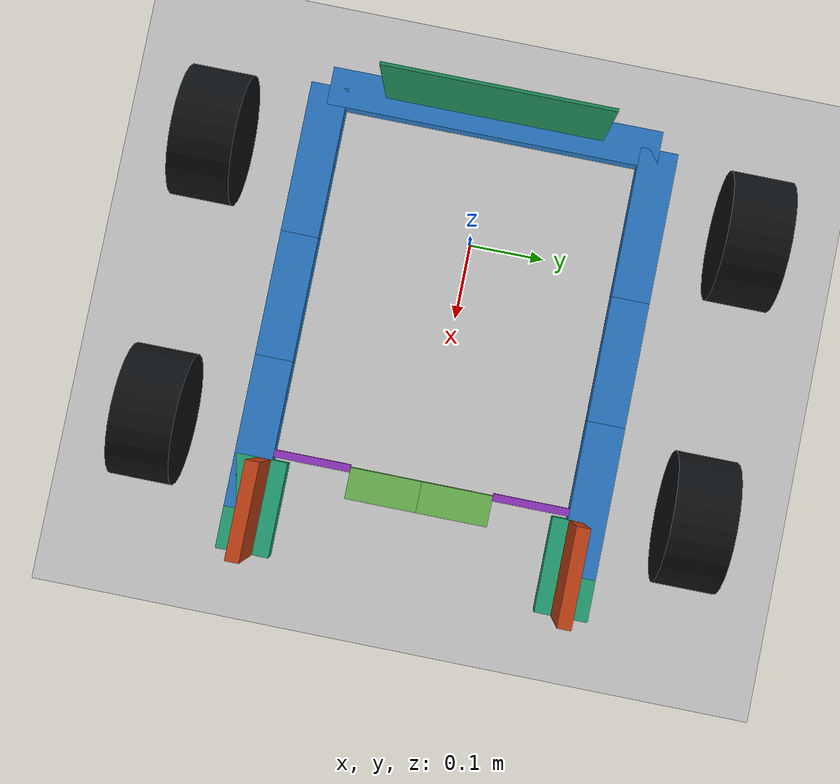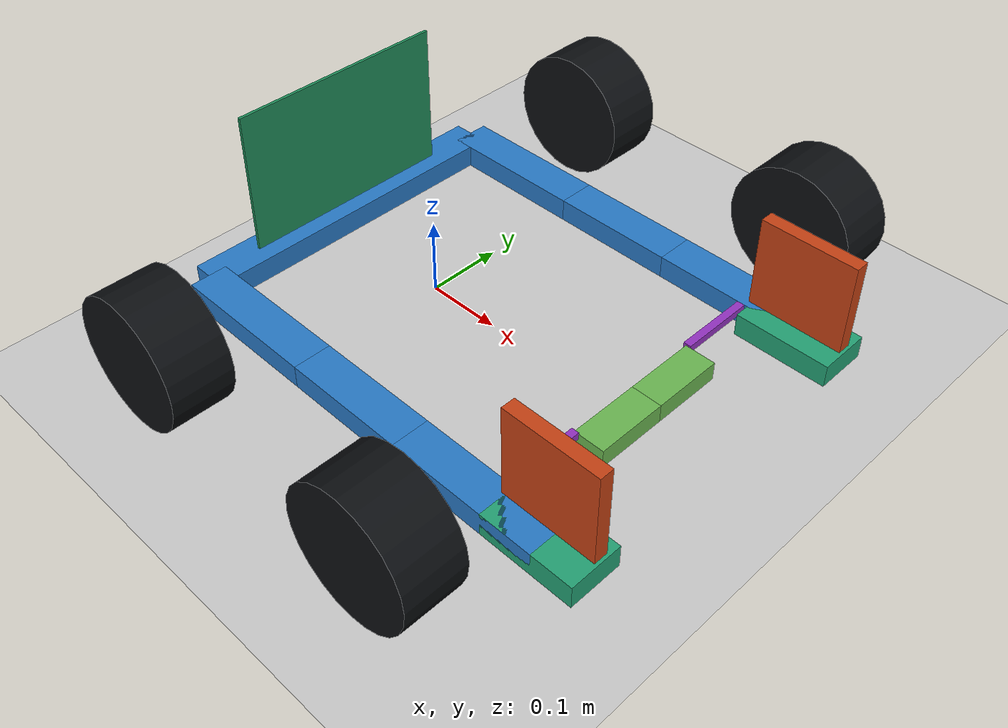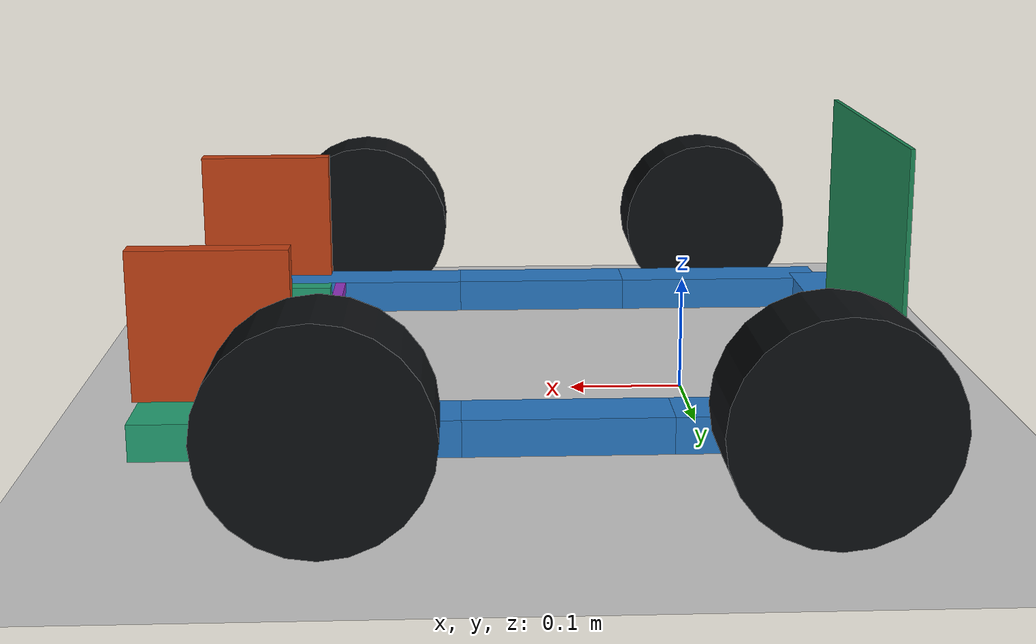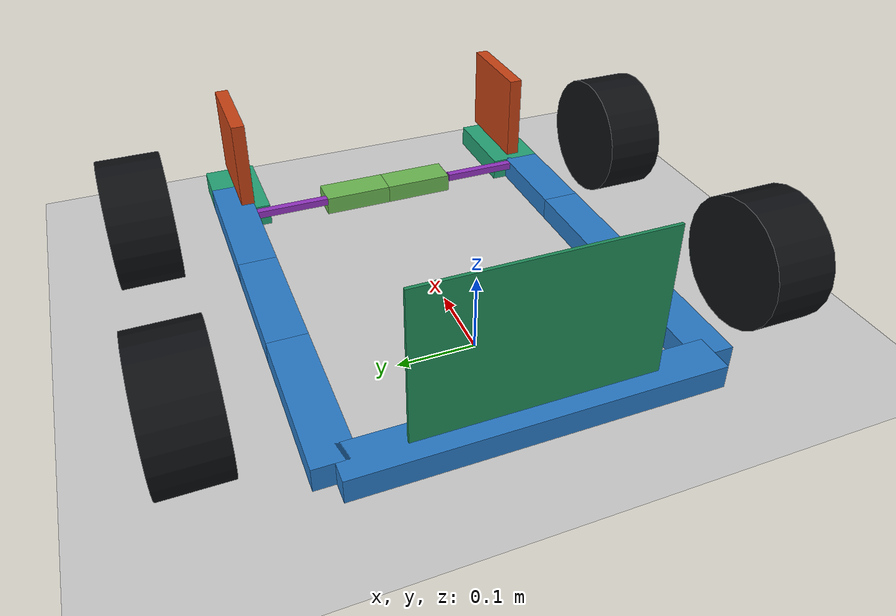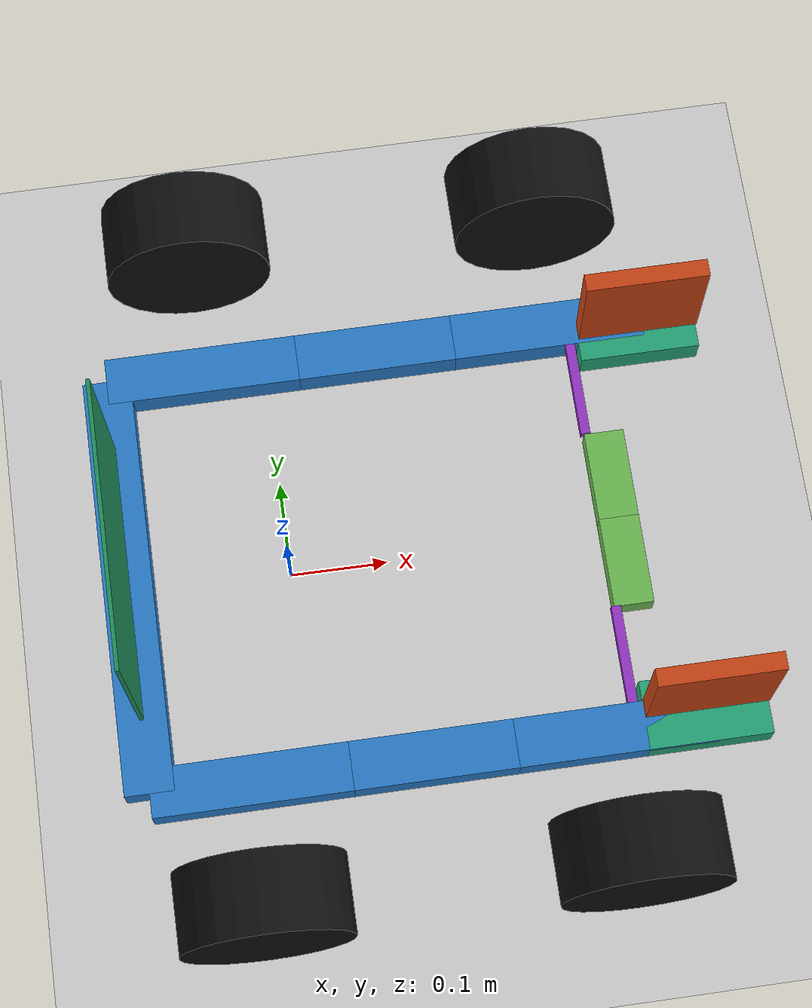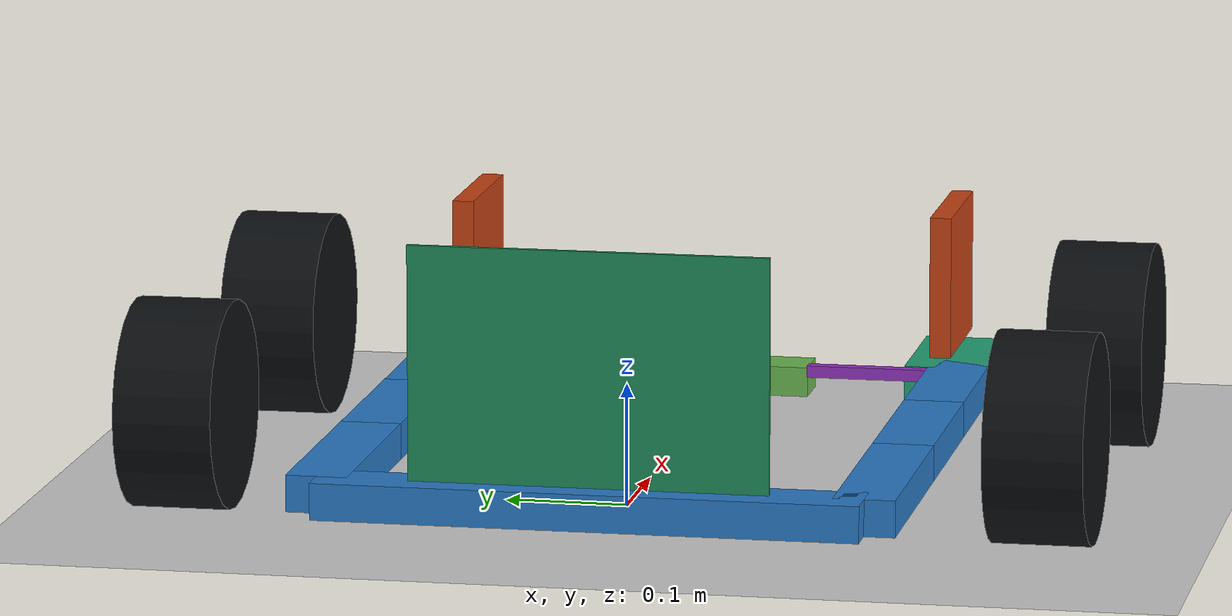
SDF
<?xml version='1.0' encoding='utf-8'?>
<sdf version="1.10">
  <world name="modular_chassis_integration">
    <physics name="deterministic_1ms" type="ignored">
      <max_step_size>0.001</max_step_size>
      <real_time_factor>1.0</real_time_factor>
    </physics>
    <gravity>0 0 -9.80665</gravity>
    <plugin filename="gz-sim-physics-system" name="gz::sim::systems::Physics" />
    <plugin filename="gz-sim-user-commands-system" name="gz::sim::systems::UserCommands" />
    <plugin filename="gz-sim-scene-broadcaster-system" name="gz::sim::systems::SceneBroadcaster" />
    <plugin filename="gz-sim-forcetorque-system" name="gz::sim::systems::ForceTorque" />
    <light type="directional" name="sun">
      <cast_shadows>true</cast_shadows>
      <pose>0 0 10 0 0 0</pose>
      <direction>-0.5 0.1 -0.9</direction>
    </light>
    <model name="ground_plane">
      <static>true</static>
      <link name="link">
        <collision name="collision">
          <geometry>
            <plane>
              <normal>0 0 1</normal>
              <size>20 20</size>
            </plane>
          </geometry>
          <surface>
            <friction>
              <ode>
                <mu>0.9</mu>
                <mu2>0.9</mu2>
              </ode>
            </friction>
          </surface>
        </collision>
        <visual name="visual">
          <geometry>
            <plane>
              <normal>0 0 1</normal>
              <size>20 20</size>
            </plane>
          </geometry>
        </visual>
      </link>
    </model>
    <model name="modular_test_chassis_v2">
      <self_collide>false</self_collide>
      <link name="rear_crossbar">
        <pose>-0.165 0 0.037 0 0 0</pose>
        <inertial>
          <mass>0.45</mass>
          <inertia>
            <ixx>0.00729375</ixx>
            <iyy>0.0001275</iyy>
            <izz>0.00735375</izz>
            <ixy>0</ixy>
            <ixz>0</ixz>
            <iyz>0</iyz>
          </inertia>
        </inertial>
        <collision name="rear_crossbar_collision">
          <pose>0 0 0 0 0 0</pose>
          <geometry>
            <box>
              <size>0.05 0.44 0.03</size>
            </box>
          </geometry>
        </collision>
        <visual name="rear_crossbar_visual">
          <pose>0 0 0 0 0 0</pose>
          <geometry>
            <box>
              <size>0.05 0.44 0.03</size>
            </box>
          </geometry>
          <material>
            <diffuse>0.16 0.48 0.78 1</diffuse>
          </material>
        </visual>
      </link>
      <link name="rear_left_motor_module">
        <pose>-0.065 0.22 0.037 0 0 0</pose>
        <inertial>
          <mass>0.32</mass>
          <inertia>
            <ixx>9.06666667e-05</ixx>
            <iyy>0.00109066667</iyy>
            <izz>0.00113333333</izz>
            <ixy>0</ixy>
            <ixz>0</ixz>
            <iyz>0</iyz>
          </inertia>
        </inertial>
        <collision name="rear_left_motor_module_collision">
          <pose>0 0 0 0 0 0</pose>
          <geometry>
            <box>
              <size>0.2 0.05 0.03</size>
            </box>
          </geometry>
        </collision>
        <visual name="rear_left_motor_module_visual">
          <pose>0 0 0 0 0 0</pose>
          <geometry>
            <box>
              <size>0.2 0.05 0.03</size>
            </box>
          </geometry>
          <material>
            <diffuse>0.16 0.48 0.78 1</diffuse>
          </material>
        </visual>
      </link>
      <link name="front_left_motor_module">
        <pose>0.3 0.22 0.037 0 0 0</pose>
        <inertial>
          <mass>0.32</mass>
          <inertia>
            <ixx>9.06666667e-05</ixx>
            <iyy>0.00109066667</iyy>
            <izz>0.00113333333</izz>
            <ixy>0</ixy>
            <ixz>0</ixz>
            <iyz>0</iyz>
          </inertia>
        </inertial>
        <collision name="front_left_motor_module_collision">
          <pose>0 0 0 0 0 0</pose>
          <geometry>
            <box>
              <size>0.2 0.05 0.03</size>
            </box>
          </geometry>
        </collision>
        <visual name="front_left_motor_module_visual">
          <pose>0 0 0 0 0 0</pose>
          <geometry>
            <box>
              <size>0.2 0.05 0.03</size>
            </box>
          </geometry>
          <material>
            <diffuse>0.16 0.48 0.78 1</diffuse>
          </material>
        </visual>
      </link>
      <link name="left_rail_extension">
        <pose>0.1175 0.22 0.037 0 0 0</pose>
        <inertial>
          <mass>0.2</mass>
          <inertia>
            <ixx>5.66666667e-05</ixx>
            <iyy>0.00046875</iyy>
            <izz>0.000495416667</izz>
            <ixy>0</ixy>
            <ixz>0</ixz>
            <iyz>0</iyz>
          </inertia>
        </inertial>
        <collision name="left_rail_extension_collision">
          <pose>0 0 0 0 0 0</pose>
          <geometry>
            <box>
              <size>0.165 0.05 0.03</size>
            </box>
          </geometry>
        </collision>
        <visual name="left_rail_extension_visual">
          <pose>0 0 0 0 0 0</pose>
          <geometry>
            <box>
              <size>0.165 0.05 0.03</size>
            </box>
          </geometry>
          <material>
            <diffuse>0.16 0.48 0.78 1</diffuse>
          </material>
        </visual>
      </link>
      <link name="left_gamma_body">
        <pose>0.3925 0.21 0.037 0 0 0</pose>
        <inertial>
          <mass>0.38</mass>
          <inertia>
            <ixx>0.000183666667</ixx>
            <iyy>0.000523291667</iyy>
            <izz>0.000649958333</izz>
            <ixy>0</ixy>
            <ixz>0</ixz>
            <iyz>0</iyz>
          </inertia>
        </inertial>
        <collision name="landing_collision">
          <pose>0 0 0 0 0 0</pose>
          <geometry>
            <box>
              <size>0.125 0.07 0.03</size>
            </box>
          </geometry>
        </collision>
        <visual name="landing_visual">
          <pose>0 0 0 0 0 0</pose>
          <geometry>
            <box>
              <size>0.125 0.07 0.03</size>
            </box>
          </geometry>
          <material>
            <diffuse>0.14 0.64 0.46 1</diffuse>
          </material>
        </visual>
      </link>
      <link name="left_intake_half">
        <pose>0.3925 0.105 0.09 0 0 0</pose>
        <inertial>
          <mass>0.7</mass>
          <inertia>
            <ixx>0.00364583333</ixx>
            <iyy>0.0046725</iyy>
            <izz>0.00569333333</izz>
            <ixy>0</ixy>
            <ixz>0</ixz>
            <iyz>0</iyz>
          </inertia>
        </inertial>
        <collision name="gamma_upright_collision">
          <pose>0 0.1 0.03 0 0 0</pose>
          <geometry>
            <box>
              <size>0.125 0.018 0.12</size>
            </box>
          </geometry>
        </collision>
        <visual name="gamma_upright_visual">
          <pose>0 0.1 0.03 0 0 0</pose>
          <geometry>
            <box>
              <size>0.125 0.018 0.12</size>
            </box>
          </geometry>
          <material>
            <diffuse>0.78 0.26 0.08 1</diffuse>
          </material>
        </visual>
        <collision name="ramp_half_collision">
          <pose>-0.0525 -0.058 -0.053 0 0 0</pose>
          <geometry>
            <box>
              <size>0.041 0.094 0.025</size>
            </box>
          </geometry>
        </collision>
        <visual name="ramp_half_visual">
          <pose>-0.0525 -0.058 -0.053 0 0 0</pose>
          <geometry>
            <box>
              <size>0.041 0.094 0.025</size>
            </box>
          </geometry>
          <material>
            <diffuse>0.42 0.72 0.32 1</diffuse>
          </material>
        </visual>
        <collision name="ramp_cradle_collision">
          <pose>-0.0715 0.0395 -0.043 0 0 0</pose>
          <geometry>
            <box>
              <size>0.01 0.101 0.01</size>
            </box>
          </geometry>
        </collision>
        <visual name="ramp_cradle_visual">
          <pose>-0.0715 0.0395 -0.043 0 0 0</pose>
          <geometry>
            <box>
              <size>0.01 0.101 0.01</size>
            </box>
          </geometry>
          <material>
            <diffuse>0.58 0.20 0.76 1</diffuse>
          </material>
        </visual>
      </link>
      <joint name="rear_left_corner_joint" type="fixed">
        <parent>rear_crossbar</parent>
        <child>rear_left_motor_module</child>
        <sensor name="connection_wrench" type="force_torque">
          <always_on>true</always_on>
          <update_rate>500</update_rate>
          <force_torque>
            <frame>child</frame>
            <measure_direction>child_to_parent</measure_direction>
          </force_torque>
        </sensor>
      </joint>
      <joint name="left_motor_splice_joint" type="fixed">
        <parent>left_rail_extension</parent>
        <child>front_left_motor_module</child>
        <sensor name="connection_wrench" type="force_torque">
          <always_on>true</always_on>
          <update_rate>500</update_rate>
          <force_torque>
            <frame>child</frame>
            <measure_direction>child_to_parent</measure_direction>
          </force_torque>
        </sensor>
      </joint>
      <joint name="left_rear_extension_splice_joint" type="fixed">
        <parent>rear_left_motor_module</parent>
        <child>left_rail_extension</child>
        <sensor name="connection_wrench" type="force_torque">
          <always_on>true</always_on>
          <update_rate>500</update_rate>
          <force_torque>
            <frame>child</frame>
            <measure_direction>child_to_parent</measure_direction>
          </force_torque>
        </sensor>
      </joint>
      <joint name="left_gamma_splice_joint" type="fixed">
        <parent>front_left_motor_module</parent>
        <child>left_gamma_body</child>
        <sensor name="connection_wrench" type="force_torque">
          <always_on>true</always_on>
          <update_rate>500</update_rate>
          <force_torque>
            <frame>child</frame>
            <measure_direction>child_to_parent</measure_direction>
          </force_torque>
        </sensor>
      </joint>
      <joint name="left_intake_mount_joint" type="fixed">
        <parent>left_gamma_body</parent>
        <child>left_intake_half</child>
        <sensor name="connection_wrench" type="force_torque">
          <always_on>true</always_on>
          <update_rate>500</update_rate>
          <force_torque>
            <frame>child</frame>
            <measure_direction>child_to_parent</measure_direction>
          </force_torque>
        </sensor>
      </joint>
      <link name="rear_right_motor_module">
        <pose>-0.065 -0.22 0.037 0 0 0</pose>
        <inertial>
          <mass>0.32</mass>
          <inertia>
            <ixx>9.06666667e-05</ixx>
            <iyy>0.00109066667</iyy>
            <izz>0.00113333333</izz>
            <ixy>0</ixy>
            <ixz>0</ixz>
            <iyz>0</iyz>
          </inertia>
        </inertial>
        <collision name="rear_right_motor_module_collision">
          <pose>0 0 0 0 0 0</pose>
          <geometry>
            <box>
              <size>0.2 0.05 0.03</size>
            </box>
          </geometry>
        </collision>
        <visual name="rear_right_motor_module_visual">
          <pose>0 0 0 0 0 0</pose>
          <geometry>
            <box>
              <size>0.2 0.05 0.03</size>
            </box>
          </geometry>
          <material>
            <diffuse>0.16 0.48 0.78 1</diffuse>
          </material>
        </visual>
      </link>
      <link name="front_right_motor_module">
        <pose>0.3 -0.22 0.037 0 0 0</pose>
        <inertial>
          <mass>0.32</mass>
          <inertia>
            <ixx>9.06666667e-05</ixx>
            <iyy>0.00109066667</iyy>
            <izz>0.00113333333</izz>
            <ixy>0</ixy>
            <ixz>0</ixz>
            <iyz>0</iyz>
          </inertia>
        </inertial>
        <collision name="front_right_motor_module_collision">
          <pose>0 0 0 0 0 0</pose>
          <geometry>
            <box>
              <size>0.2 0.05 0.03</size>
            </box>
          </geometry>
        </collision>
        <visual name="front_right_motor_module_visual">
          <pose>0 0 0 0 0 0</pose>
          <geometry>
            <box>
              <size>0.2 0.05 0.03</size>
            </box>
          </geometry>
          <material>
            <diffuse>0.16 0.48 0.78 1</diffuse>
          </material>
        </visual>
      </link>
      <link name="right_rail_extension">
        <pose>0.1175 -0.22 0.037 0 0 0</pose>
        <inertial>
          <mass>0.2</mass>
          <inertia>
            <ixx>5.66666667e-05</ixx>
            <iyy>0.00046875</iyy>
            <izz>0.000495416667</izz>
            <ixy>0</ixy>
            <ixz>0</ixz>
            <iyz>0</iyz>
          </inertia>
        </inertial>
        <collision name="right_rail_extension_collision">
          <pose>0 0 0 0 0 0</pose>
          <geometry>
            <box>
              <size>0.165 0.05 0.03</size>
            </box>
          </geometry>
        </collision>
        <visual name="right_rail_extension_visual">
          <pose>0 0 0 0 0 0</pose>
          <geometry>
            <box>
              <size>0.165 0.05 0.03</size>
            </box>
          </geometry>
          <material>
            <diffuse>0.16 0.48 0.78 1</diffuse>
          </material>
        </visual>
      </link>
      <link name="right_gamma_body">
        <pose>0.3925 -0.21 0.037 0 0 0</pose>
        <inertial>
          <mass>0.38</mass>
          <inertia>
            <ixx>0.000183666667</ixx>
            <iyy>0.000523291667</iyy>
            <izz>0.000649958333</izz>
            <ixy>0</ixy>
            <ixz>0</ixz>
            <iyz>0</iyz>
          </inertia>
        </inertial>
        <collision name="landing_collision">
          <pose>0 0 0 0 0 0</pose>
          <geometry>
            <box>
              <size>0.125 0.07 0.03</size>
            </box>
          </geometry>
        </collision>
        <visual name="landing_visual">
          <pose>0 0 0 0 0 0</pose>
          <geometry>
            <box>
              <size>0.125 0.07 0.03</size>
            </box>
          </geometry>
          <material>
            <diffuse>0.14 0.64 0.46 1</diffuse>
          </material>
        </visual>
      </link>
      <link name="right_intake_half">
        <pose>0.3925 -0.105 0.09 0 0 0</pose>
        <inertial>
          <mass>0.7</mass>
          <inertia>
            <ixx>0.00364583333</ixx>
            <iyy>0.0046725</iyy>
            <izz>0.00569333333</izz>
            <ixy>0</ixy>
            <ixz>0</ixz>
            <iyz>0</iyz>
          </inertia>
        </inertial>
        <collision name="gamma_upright_collision">
          <pose>0 -0.1 0.03 0 0 0</pose>
          <geometry>
            <box>
              <size>0.125 0.018 0.12</size>
            </box>
          </geometry>
        </collision>
        <visual name="gamma_upright_visual">
          <pose>0 -0.1 0.03 0 0 0</pose>
          <geometry>
            <box>
              <size>0.125 0.018 0.12</size>
            </box>
          </geometry>
          <material>
            <diffuse>0.78 0.26 0.08 1</diffuse>
          </material>
        </visual>
        <collision name="ramp_half_collision">
          <pose>-0.0525 0.058 -0.053 0 0 0</pose>
          <geometry>
            <box>
              <size>0.041 0.094 0.025</size>
            </box>
          </geometry>
        </collision>
        <visual name="ramp_half_visual">
          <pose>-0.0525 0.058 -0.053 0 0 0</pose>
          <geometry>
            <box>
              <size>0.041 0.094 0.025</size>
            </box>
          </geometry>
          <material>
            <diffuse>0.42 0.72 0.32 1</diffuse>
          </material>
        </visual>
        <collision name="ramp_cradle_collision">
          <pose>-0.0715 -0.0395 -0.043 0 0 0</pose>
          <geometry>
            <box>
              <size>0.01 0.101 0.01</size>
            </box>
          </geometry>
        </collision>
        <visual name="ramp_cradle_visual">
          <pose>-0.0715 -0.0395 -0.043 0 0 0</pose>
          <geometry>
            <box>
              <size>0.01 0.101 0.01</size>
            </box>
          </geometry>
          <material>
            <diffuse>0.58 0.20 0.76 1</diffuse>
          </material>
        </visual>
      </link>
      <joint name="rear_right_corner_joint" type="fixed">
        <parent>rear_crossbar</parent>
        <child>rear_right_motor_module</child>
        <sensor name="connection_wrench" type="force_torque">
          <always_on>true</always_on>
          <update_rate>500</update_rate>
          <force_torque>
            <frame>child</frame>
            <measure_direction>child_to_parent</measure_direction>
          </force_torque>
        </sensor>
      </joint>
      <joint name="right_motor_splice_joint" type="fixed">
        <parent>right_rail_extension</parent>
        <child>front_right_motor_module</child>
        <sensor name="connection_wrench" type="force_torque">
          <always_on>true</always_on>
          <update_rate>500</update_rate>
          <force_torque>
            <frame>child</frame>
            <measure_direction>child_to_parent</measure_direction>
          </force_torque>
        </sensor>
      </joint>
      <joint name="right_rear_extension_splice_joint" type="fixed">
        <parent>rear_right_motor_module</parent>
        <child>right_rail_extension</child>
        <sensor name="connection_wrench" type="force_torque">
          <always_on>true</always_on>
          <update_rate>500</update_rate>
          <force_torque>
            <frame>child</frame>
            <measure_direction>child_to_parent</measure_direction>
          </force_torque>
        </sensor>
      </joint>
      <joint name="right_gamma_splice_joint" type="fixed">
        <parent>front_right_motor_module</parent>
        <child>right_gamma_body</child>
        <sensor name="connection_wrench" type="force_torque">
          <always_on>true</always_on>
          <update_rate>500</update_rate>
          <force_torque>
            <frame>child</frame>
            <measure_direction>child_to_parent</measure_direction>
          </force_torque>
        </sensor>
      </joint>
      <joint name="right_intake_mount_joint" type="fixed">
        <parent>right_gamma_body</parent>
        <child>right_intake_half</child>
        <sensor name="connection_wrench" type="force_torque">
          <always_on>true</always_on>
          <update_rate>500</update_rate>
          <force_torque>
            <frame>child</frame>
            <measure_direction>child_to_parent</measure_direction>
          </force_torque>
        </sensor>
      </joint>
      <link name="rear_left_wheel">
        <pose>-0.065 0.35 0.085 1.57079633 0 0</pose>
        <inertial>
          <mass>0.7</mass>
          <inertia>
            <ixx>0.00205916667</ixx>
            <iyy>0.00205916667</iyy>
            <izz>0.00337166667</izz>
            <ixy>0</ixy>
            <ixz>0</ixz>
            <iyz>0</iyz>
          </inertia>
        </inertial>
        <collision name="rear_left_collision">
          <geometry>
            <cylinder>
              <radius>0.085</radius>
              <length>0.08</length>
            </cylinder>
          </geometry>
          <surface>
            <friction>
              <ode>
                <mu>0.9</mu>
                <mu2>0.9</mu2>
              </ode>
            </friction>
          </surface>
        </collision>
        <visual name="rear_left_visual">
          <geometry>
            <cylinder>
              <radius>0.085</radius>
              <length>0.08</length>
            </cylinder>
          </geometry>
          <material>
            <diffuse>0.05 0.06 0.07 1</diffuse>
          </material>
        </visual>
      </link>
      <joint name="rear_left_wheel_joint" type="revolute">
        <parent>rear_left_motor_module</parent>
        <child>rear_left_wheel</child>
        <axis>
          <xyz expressed_in="__model__">0 1 0</xyz>
          <limit>
            <effort>3.73</effort>
            <velocity>13</velocity>
          </limit>
        </axis>
        <sensor name="connection_wrench" type="force_torque">
          <always_on>true</always_on>
          <update_rate>500</update_rate>
          <force_torque>
            <frame>child</frame>
            <measure_direction>child_to_parent</measure_direction>
          </force_torque>
        </sensor>
      </joint>
      <link name="front_left_wheel">
        <pose>0.3 0.35 0.085 1.57079633 0 0</pose>
        <inertial>
          <mass>0.7</mass>
          <inertia>
            <ixx>0.00205916667</ixx>
            <iyy>0.00205916667</iyy>
            <izz>0.00337166667</izz>
            <ixy>0</ixy>
            <ixz>0</ixz>
            <iyz>0</iyz>
          </inertia>
        </inertial>
        <collision name="front_left_collision">
          <geometry>
            <cylinder>
              <radius>0.085</radius>
              <length>0.08</length>
            </cylinder>
          </geometry>
          <surface>
            <friction>
              <ode>
                <mu>0.9</mu>
                <mu2>0.9</mu2>
              </ode>
            </friction>
          </surface>
        </collision>
        <visual name="front_left_visual">
          <geometry>
            <cylinder>
              <radius>0.085</radius>
              <length>0.08</length>
            </cylinder>
          </geometry>
          <material>
            <diffuse>0.05 0.06 0.07 1</diffuse>
          </material>
        </visual>
      </link>
      <joint name="front_left_wheel_joint" type="revolute">
        <parent>front_left_motor_module</parent>
        <child>front_left_wheel</child>
        <axis>
          <xyz expressed_in="__model__">0 1 0</xyz>
          <limit>
            <effort>3.73</effort>
            <velocity>13</velocity>
          </limit>
        </axis>
        <sensor name="connection_wrench" type="force_torque">
          <always_on>true</always_on>
          <update_rate>500</update_rate>
          <force_torque>
            <frame>child</frame>
            <measure_direction>child_to_parent</measure_direction>
          </force_torque>
        </sensor>
      </joint>
      <link name="rear_right_wheel">
        <pose>-0.065 -0.35 0.085 1.57079633 0 0</pose>
        <inertial>
          <mass>0.7</mass>
          <inertia>
            <ixx>0.00205916667</ixx>
            <iyy>0.00205916667</iyy>
            <izz>0.00337166667</izz>
            <ixy>0</ixy>
            <ixz>0</ixz>
            <iyz>0</iyz>
          </inertia>
        </inertial>
        <collision name="rear_right_collision">
          <geometry>
            <cylinder>
              <radius>0.085</radius>
              <length>0.08</length>
            </cylinder>
          </geometry>
          <surface>
            <friction>
              <ode>
                <mu>0.9</mu>
                <mu2>0.9</mu2>
              </ode>
            </friction>
          </surface>
        </collision>
        <visual name="rear_right_visual">
          <geometry>
            <cylinder>
              <radius>0.085</radius>
              <length>0.08</length>
            </cylinder>
          </geometry>
          <material>
            <diffuse>0.05 0.06 0.07 1</diffuse>
          </material>
        </visual>
      </link>
      <joint name="rear_right_wheel_joint" type="revolute">
        <parent>rear_right_motor_module</parent>
        <child>rear_right_wheel</child>
        <axis>
          <xyz expressed_in="__model__">0 1 0</xyz>
          <limit>
            <effort>3.73</effort>
            <velocity>13</velocity>
          </limit>
        </axis>
        <sensor name="connection_wrench" type="force_torque">
          <always_on>true</always_on>
          <update_rate>500</update_rate>
          <force_torque>
            <frame>child</frame>
            <measure_direction>child_to_parent</measure_direction>
          </force_torque>
        </sensor>
      </joint>
      <link name="front_right_wheel">
        <pose>0.3 -0.35 0.085 1.57079633 0 0</pose>
        <inertial>
          <mass>0.7</mass>
          <inertia>
            <ixx>0.00205916667</ixx>
            <iyy>0.00205916667</iyy>
            <izz>0.00337166667</izz>
            <ixy>0</ixy>
            <ixz>0</ixz>
            <iyz>0</iyz>
          </inertia>
        </inertial>
        <collision name="front_right_collision">
          <geometry>
            <cylinder>
              <radius>0.085</radius>
              <length>0.08</length>
            </cylinder>
          </geometry>
          <surface>
            <friction>
              <ode>
                <mu>0.9</mu>
                <mu2>0.9</mu2>
              </ode>
            </friction>
          </surface>
        </collision>
        <visual name="front_right_visual">
          <geometry>
            <cylinder>
              <radius>0.085</radius>
              <length>0.08</length>
            </cylinder>
          </geometry>
          <material>
            <diffuse>0.05 0.06 0.07 1</diffuse>
          </material>
        </visual>
      </link>
      <joint name="front_right_wheel_joint" type="revolute">
        <parent>front_right_motor_module</parent>
        <child>front_right_wheel</child>
        <axis>
          <xyz expressed_in="__model__">0 1 0</xyz>
          <limit>
            <effort>3.73</effort>
            <velocity>13</velocity>
          </limit>
        </axis>
        <sensor name="connection_wrench" type="force_torque">
          <always_on>true</always_on>
          <update_rate>500</update_rate>
          <force_torque>
            <frame>child</frame>
            <measure_direction>child_to_parent</measure_direction>
          </force_torque>
        </sensor>
      </joint>
      <link name="electronics_tray">
        <pose>-0.165 0 0.147 0 0 0</pose>
        <inertial>
          <mass>0.35</mass>
          <inertia>
            <ixx>0.00350583333</ixx>
            <iyy>0.00105338333</iyy>
            <izz>0.00245338333</izz>
            <ixy>0</ixy>
            <ixz>0</ixz>
            <iyz>0</iyz>
          </inertia>
        </inertial>
        <collision name="electronics_tray_collision">
          <pose>0 0 0 0 0 0</pose>
          <geometry>
            <box>
              <size>0.004 0.29 0.19</size>
            </box>
          </geometry>
        </collision>
        <visual name="electronics_tray_visual">
          <pose>0 0 0 0 0 0</pose>
          <geometry>
            <box>
              <size>0.004 0.29 0.19</size>
            </box>
          </geometry>
          <material>
            <diffuse>0.12 0.55 0.35 1</diffuse>
          </material>
        </visual>
      </link>
      <joint name="electronics_tray_joint" type="fixed">
        <parent>rear_crossbar</parent>
        <child>electronics_tray</child>
        <sensor name="connection_wrench" type="force_torque">
          <always_on>true</always_on>
          <update_rate>500</update_rate>
          <force_torque>
            <frame>child</frame>
            <measure_direction>child_to_parent</measure_direction>
          </force_torque>
        </sensor>
      </joint>
      <plugin filename="gz-sim-diff-drive-system" name="gz::sim::systems::DiffDrive">
        <left_joint>front_left_wheel_joint</left_joint>
        <left_joint>rear_left_wheel_joint</left_joint>
        <right_joint>front_right_wheel_joint</right_joint>
        <right_joint>rear_right_wheel_joint</right_joint>
        <wheel_separation>0.70</wheel_separation>
        <wheel_radius>0.085</wheel_radius>
        <topic>/modular_chassis_integration/cmd_vel</topic>
        <max_linear_acceleration>2.0</max_linear_acceleration>
        <max_angular_acceleration>4.0</max_angular_acceleration>
        <odom_publish_frequency>100</odom_publish_frequency>
      </plugin>
    </model>
  </world>
</sdf>
